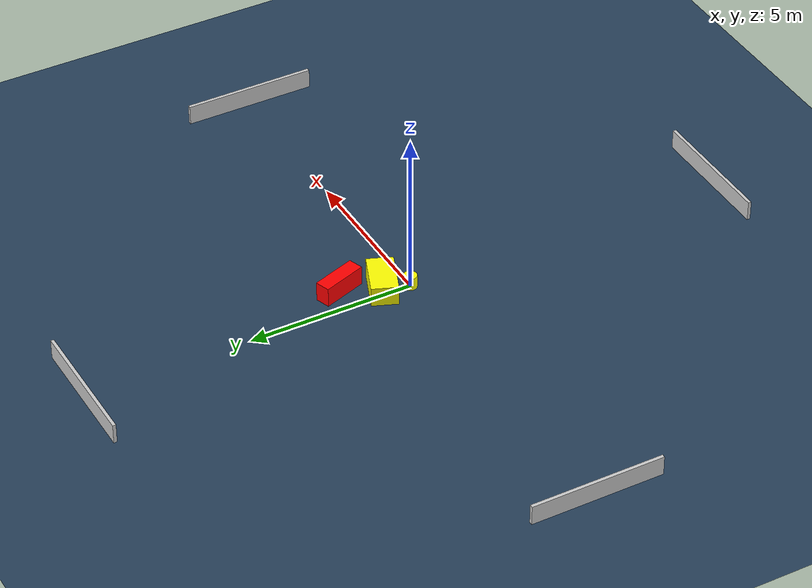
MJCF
<?xml version="1.0" ?>
<mujoco model="generated_environment">
  <option timestep="0.01" integrator="RK4" cone="elliptic"/>
  <default>
    <geom density="1"/>
  </default>
  <asset>
    <texture builtin="gradient" height="3072" name="skybox" rgb1="0.3 0.5 0.7" rgb2="0 0 0" type="skybox" width="512"/>
    <texture builtin="checker" height="300" name="groundplane" rgb1="0.2 0.3 0.4" rgb2="0.1 0.2 0.3" type="2d" width="300"/>
    <material name="groundplane" reflectance="0.2" texrepeat="5 5" texture="groundplane"/>
  </asset>
  <worldbody>
    <light dir="0 0 -1" directional="true" pos="0 0 1.5"/>
    <geom condim="3" friction="0.5 0.005 0.001" material="groundplane" name="floor" pos="0 0 0" size="0 0 0.05" type="plane"/>
    <body name="walls">
      <geom name="wall_1" condim="4" pos="-10.0 0.0 0.3" rgba="0.800000011920929 0.800000011920929 0.800000011920929 1.0" size="0.05 2.0 0.3" type="box"/>
      <geom name="wall_2" condim="4" pos="10.0 0.0 0.3" rgba="0.800000011920929 0.800000011920929 0.800000011920929 1.0" size="0.05 2.0 0.3" type="box"/>
      <geom name="wall_3" condim="4" pos="0.0 -10.0 0.3" rgba="0.800000011920929 0.800000011920929 0.800000011920929 1.0" size="2.0 0.05 0.3" type="box"/>
      <geom name="wall_4" condim="4" pos="0.0 10.0 0.3" rgba="0.800000011920929 0.800000011920929 0.800000011920929 1.0" size="2.0 0.05 0.3" type="box"/>
    </body>
    <body name="robot">
      <joint name="joint_x" type="slide" pos="0 0 0" axis="1 0 0"/>
      <joint name="joint_y" type="slide" pos="0 0 0" axis="0 1 0"/>
      <geom name="robot" type="cylinder" pos="0.0 0.0 0.2" size="0.2 0.2 0.0" mass="5.0" friction="1.0 0.005 0.0001" condim="4" rgba="1.0 1.0 0.0 1.0"/>
    </body>
    <body name="obstacle_1_movable">
      <geom name="obstacle_1_movable" condim="4" pos="0.24193441686615744 0.7589422170770683 0.3" euler="0 0 337.9233083675711" friction="0.0 0.005 0.001" rgba="1.0 1.0 0.0 1.0" size="0.6849512964664174 0.3944469825400636 0.3" type="box" mass="0.1"/>
      <joint type="free"/>
    </body>
    <body name="obstacle_2_static">
      <geom name="obstacle_2_static" condim="4" pos="0.7457293606549622 1.8541501096631656 0.3" euler="0 0 198.92062579696199" friction="0.0 0.005 0.001" rgba="1.0 0.0 0.0 1.0" size="0.22330637018960744 0.6822692090527531 0.3" type="box"/>
    </body>
  </worldbody>
  <actuator>
    <motor name="actuator_x" joint="joint_x" gear="1" ctrlrange="-1 1"/>
    <motor name="actuator_y" joint="joint_y" gear="1" ctrlrange="-1 1"/>
  </actuator>
</mujoco>
